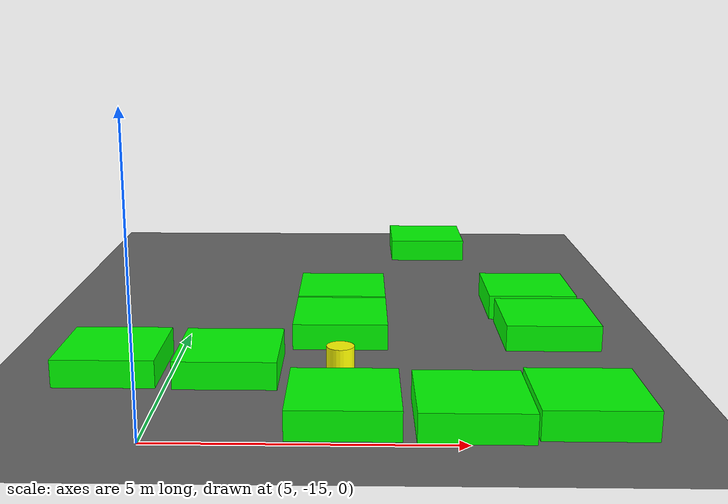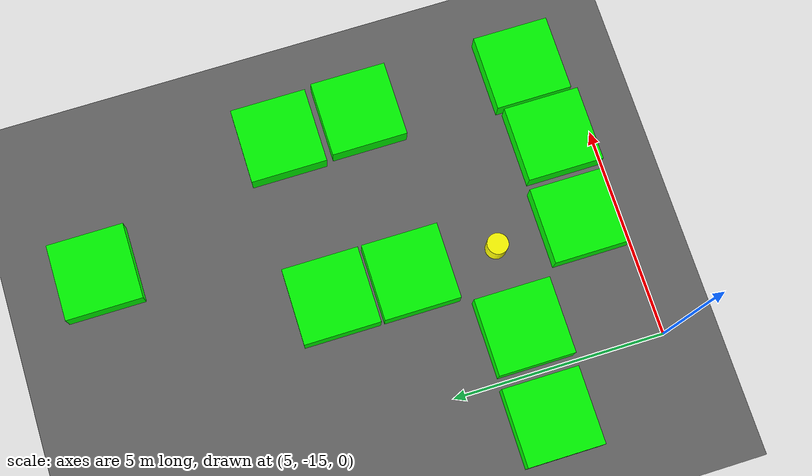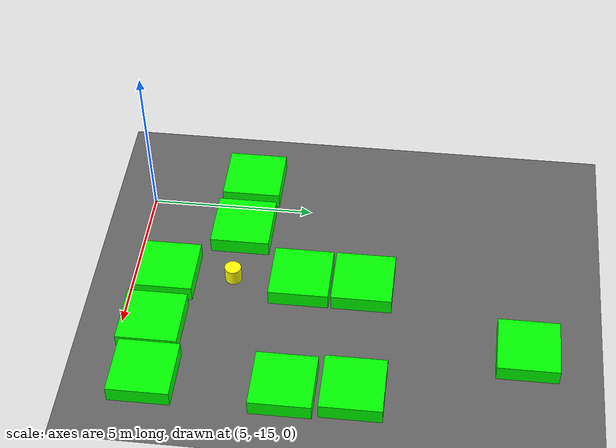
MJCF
<mujoco model="lvl5_deadend_obs10_dlong_depth1_seed2083">
    <compiler angle="degree" coordinate="local" inertiafromgeom="true"/>
    <option integrator="RK4" timestep="0.01"/>

    <asset>
        <texture builtin="gradient" height="100" rgb1="0.6 0.8 1" rgb2="0 0 0" type="skybox" width="100"/>
        <texture name="floor_texture" type="2d" builtin="checker" width="100" height="100" rgb1="0 0 0" rgb2="0.8 0.8 0.8"/>
        <material name="MatPlane" reflectance="0.5" shininess="1" specular="1" texrepeat="10 10" texture="floor_texture"/>
    </asset>

    <!-- Excluding the contact between the agent and the goal, and the agent and the floor -->
    <contact>
        <exclude body1="agent" body2="goal"/>
        <exclude body1 = "agent" body2 = "floor"/>
    </contact>

    <extension>
        <plugin plugin = "mujoco.pid">
            <instance name = "pid1">
                <config key="kp" value="2"/>
                <config key="ki" value="0"/>
                <config key="kd" value="55"/>
            </instance>
        </plugin>
    </extension>

    <worldbody>
        <light cutoff="100" diffuse="1 1 1" dir="-0 0 -1.3" directional="true" exponent="1" pos="0 0 1.3" specular=".1 .1 .1"/>
        <body name="floor" pos="0 0 0">
            <geom name="floor_geom" type="plane" size="20 20 0.1" material="MatPlane"/>
        </body>

                <body name="goal" pos="0.0000 0.0000 0">
            <geom name="goal_geom" type="plane" size="0.5 0.5 1" pos="0 0 0" rgba="1 0 0 1"/>
        </body>

                <body name="agent" pos="8.0000 -12.0000 0.250">
            <joint name="j1" type="slide" axis ="1 0 0 "/>
            <joint name="j2" type="slide" axis ="0 1 0 "/>
            <geom name="agent_geom" type="cylinder" size="0.25 0.25 0.250" rgba="1 1 0 1"/>
        </body>

        <body name="obstacle1" pos="7.9704 -8.0429 0.250">  <geom name="obstacle1_geom" type="box" size="0.9000 0.9000 0.250" rgba="0 1 0 1"/></body>
        <body name="obstacle2" pos="11.9277 -7.9694 0.250">  <geom name="obstacle2_geom" type="box" size="0.9000 0.9000 0.250" rgba="0 1 0 1"/></body>
        <body name="obstacle3" pos="7.9717 -9.9270 0.250">  <geom name="obstacle3_geom" type="box" size="0.9000 0.9000 0.250" rgba="0 1 0 1"/></body>
        <body name="obstacle4" pos="10.0688 -3.0992 0.250">  <geom name="obstacle4_geom" type="box" size="0.9000 0.9000 0.250" rgba="0 1 0 1"/></body>
        <body name="obstacle5" pos="12.0061 -9.9345 0.250">  <geom name="obstacle5_geom" type="box" size="0.9000 0.9000 0.250" rgba="0 1 0 1"/></body>
        <body name="obstacle6" pos="3.9473 -11.9273 0.250">  <geom name="obstacle6_geom" type="box" size="0.9000 0.9000 0.250" rgba="0 1 0 1"/></body>
        <body name="obstacle7" pos="6.0379 -11.9727 0.250">  <geom name="obstacle7_geom" type="box" size="0.9000 0.9000 0.250" rgba="0 1 0 1"/></body>
        <body name="obstacle8" pos="8.0872 -14.0010 0.250">  <geom name="obstacle8_geom" type="box" size="0.9000 0.9000 0.250" rgba="0 1 0 1"/></body>
        <body name="obstacle9" pos="10.0992 -14.0638 0.250">  <geom name="obstacle9_geom" type="box" size="0.9000 0.9000 0.250" rgba="0 1 0 1"/></body>
        <body name="obstacle10" pos="11.9598 -13.9294 0.250">  <geom name="obstacle10_geom" type="box" size="0.9000 0.9000 0.250" rgba="0 1 0 1"/></body>

    </worldbody>

    <sensor>
<!-- SENSORS -->

        <distance name="dist1" geom1="agent_geom" geom2="obstacle1_geom" cutoff="1.5"/>
        <distance name="dist2" geom1="agent_geom" geom2="obstacle2_geom" cutoff="1.5"/>
        <distance name="dist3" geom1="agent_geom" geom2="obstacle3_geom" cutoff="1.5"/>
        <distance name="dist4" geom1="agent_geom" geom2="obstacle4_geom" cutoff="1.5"/>
        <distance name="dist5" geom1="agent_geom" geom2="obstacle5_geom" cutoff="1.5"/>
        <distance name="dist6" geom1="agent_geom" geom2="obstacle6_geom" cutoff="1.5"/>
        <distance name="dist7" geom1="agent_geom" geom2="obstacle7_geom" cutoff="1.5"/>
        <distance name="dist8" geom1="agent_geom" geom2="obstacle8_geom" cutoff="1.5"/>
        <distance name="dist9" geom1="agent_geom" geom2="obstacle9_geom" cutoff="1.5"/>
        <distance name="dist10" geom1="agent_geom" geom2="obstacle10_geom" cutoff="1.5"/>
</sensor>

    <actuator>
        <plugin joint="j1" plugin="mujoco.pid" instance="pid1" />
        <plugin joint="j2" plugin="mujoco.pid" instance="pid1"/>
    </actuator>
</mujoco>
